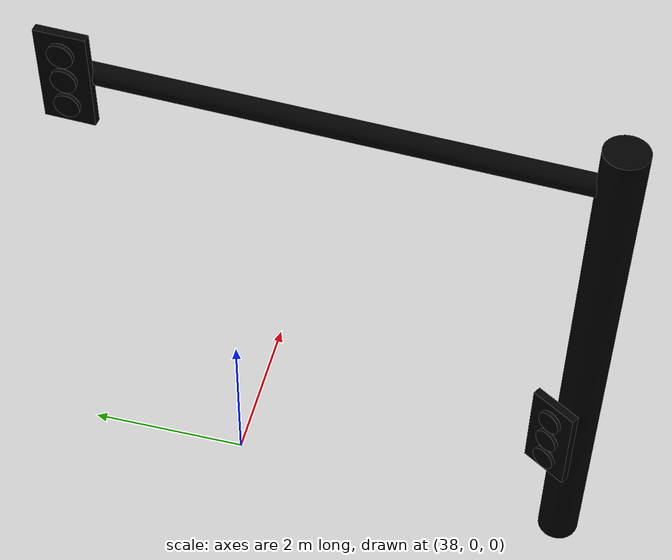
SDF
<sdf version="1.7">
 <world name="default">
  <scene>
   <grid>0</grid>
   <ambient>0.4 0.4 0.4 1</ambient>
   <background>0.7 0.7 0.7 1</background>
   <shadows>1</shadows>
  </scene>
  <light name="sun" type="directional">
   <pose>0 0 10 0 -0 0</pose>
   <diffuse>0.8 0.8 0.8 1</diffuse>
   <specular>0.2 0.2 0.2 1</specular>
   <attenuation>
    <range>1000</range>
    <constant>0.9</constant>
    <linear>0.01</linear>
    <quadratic>0.001</quadratic>
   </attenuation>
   <direction>-0.5 0.1 -0.9</direction>
   <spot><inner_angle>0</inner_angle><outer_angle>0</outer_angle><falloff>0</falloff></spot>
  </light>
  <model name="ground">
   <link name="body">
    <collision name="geom">
     <geometry><plane><normal>0 0 1</normal><size>1 1</size></plane></geometry>
     <surface><friction><ode><mu>100</mu><mu2>50</mu2></ode></friction></surface>
    </collision>
   </link>
   <static>1</static>
  </model>
  <gravity>0 0 -9.8</gravity>
  <magnetic_field>6e-06 2.3e-05 -4.2e-05</magnetic_field>
  <atmosphere type="adiabatic"/>
  <physics type="ode">
   <max_step_size>0.001</max_step_size>
   <real_time_factor>1</real_time_factor>
   <real_time_update_rate>1000</real_time_update_rate>
  </physics>
  <audio><device>default</device></audio>
  <spherical_coordinates>
   <surface_model>EARTH_WGS84</surface_model>
   <latitude_deg>0</latitude_deg>
   <longitude_deg>0</longitude_deg>
   <elevation>0</elevation>
   <heading_deg>0</heading_deg>
  </spherical_coordinates>
  <model name="cantilevered_light">
   <static>0</static>
   <link name="base">
    <gravity>0</gravity>
    <visual name="visual">
     <pose>0 0 3.275 0 -0 0</pose>
     <geometry><cylinder><radius>0.25</radius><length>6.55</length></cylinder></geometry>
     <material><ambient>0 0 0 1</ambient><diffuse>0 0 0 1</diffuse><specular>0 0 0 1</specular></material>
    </visual>
    <collision name="collision">
     <pose>0 0 3.275 0 -0 0</pose>
     <geometry><cylinder><radius>0.25</radius><length>6.55</length></cylinder></geometry>
    </collision>
    <inertial>
     <inertia><ixx>1</ixx><ixy>0</ixy><ixz>0</ixz><iyy>1</iyy><iyz>0</iyz><izz>1</izz></inertia>
     <mass>1</mass>
    </inertial>
   </link>
   <link name="cross_beam">
    <gravity>0</gravity>
    <pose>0 0 6.015 1.5707 -0 0</pose>
    <visual name="visual">
     <pose>0 0 3 0 -0 0</pose>
     <geometry><cylinder><radius>0.125</radius><length>6</length></cylinder></geometry>
     <material><ambient>0 0 0 1</ambient><diffuse>0 0 0 1</diffuse><specular>0 0 0 1</specular></material>
    </visual>
    <collision name="collision">
     <pose>0 0 3 0 -0 0</pose>
     <geometry><cylinder><radius>0.125</radius><length>6</length></cylinder></geometry>
    </collision>
    <inertial>
     <inertia><ixx>1</ixx><ixy>0</ixy><ixz>0</ixz><iyy>1</iyy><iyz>0</iyz><izz>1</izz></inertia>
     <mass>1</mass>
    </inertial>
   </link>
   <frame name="base_frame" attached_to="base"/>
   <frame name="cross_beam_frame"><pose relative_to="base_frame">0 0 6.015 1.5707 -0 0</pose></frame>
   <frame name="traffic_light::__model__" attached_to="traffic_light::light_fixture">
    <pose relative_to="cross_beam_frame">0.13 -0.535 6 -1.5707 0 0</pose>
   </frame>
   <static>0</static>
   <link name="traffic_light::light_fixture">
    <gravity>0</gravity>
    <pose relative_to="traffic_light::__model__">0 0 0 0 -0 0</pose>
    <visual name="visual">
     <pose>0 0 0.535 0 -0 0</pose>
     <geometry><box><size>0.1 0.6 1.2</size></box></geometry>
     <material><ambient>0 0 0 1</ambient><diffuse>0 0 0 1</diffuse><specular>0 0 0 1</specular></material>
    </visual>
    <collision name="collision">
     <pose>0 0 0.535 0 -0 0</pose>
     <geometry><box><size>0.1 0.6 1.2</size></box></geometry>
    </collision>
    <inertial>
     <inertia><ixx>1</ixx><ixy>0</ixy><ixz>0</ixz><iyy>1</iyy><iyz>0</iyz><izz>1</izz></inertia>
     <mass>1</mass>
    </inertial>
   </link>
   <link name="traffic_light::green_off">
    <gravity>0</gravity>
    <pose relative_to="traffic_light::__model__">0.075 0 0.175 0 1.5707 0</pose>
    <collision name="collision">
     <geometry><cylinder><radius>0.15</radius><length>0.05</length></cylinder></geometry>
    </collision>
    <visual name="visual">
     <geometry><cylinder><radius>0.15</radius><length>0.05</length></cylinder></geometry>
     <material>
      <ambient>0 1 0 1</ambient>
      <diffuse>0 0 0 1</diffuse>
      <specular>0 0 0 1</specular>
      <emissive>0 0 0 1</emissive>
     </material>
    </visual>
    <inertial>
     <inertia><ixx>1</ixx><ixy>0</ixy><ixz>0</ixz><iyy>1</iyy><iyz>0</iyz><izz>1</izz></inertia>
     <mass>1</mass>
    </inertial>
   </link>
   <link name="traffic_light::green_on">
    <gravity>0</gravity>
    <pose relative_to="traffic_light::__model__">0 0 0.175 0 1.5707 0</pose>
    <collision name="collision">
     <geometry><cylinder><radius>0.15</radius><length>0.002</length></cylinder></geometry>
    </collision>
    <visual name="visual">
     <geometry><cylinder><radius>0.15</radius><length>0.002</length></cylinder></geometry>
     <material>
      <ambient>0 0 0 1</ambient>
      <diffuse>0 0 0 1</diffuse>
      <specular>0 0 0 1</specular>
      <emissive>0 1 0 1</emissive>
     </material>
    </visual>
    <inertial>
     <inertia><ixx>1</ixx><ixy>0</ixy><ixz>0</ixz><iyy>1</iyy><iyz>0</iyz><izz>1</izz></inertia>
     <mass>1</mass>
    </inertial>
   </link>
   <link name="traffic_light::yellow_off">
    <gravity>0</gravity>
    <pose relative_to="traffic_light::__model__">0.075 0 0.525 0 1.5707 0</pose>
    <collision name="collision">
     <geometry><cylinder><radius>0.15</radius><length>0.05</length></cylinder></geometry>
    </collision>
    <visual name="visual">
     <geometry><cylinder><radius>0.15</radius><length>0.05</length></cylinder></geometry>
     <material>
      <ambient>1 1 0 1</ambient>
      <diffuse>0 0 0 1</diffuse>
      <specular>0 0 0 1</specular>
      <emissive>0 0 0 1</emissive>
     </material>
    </visual>
    <inertial>
     <inertia><ixx>1</ixx><ixy>0</ixy><ixz>0</ixz><iyy>1</iyy><iyz>0</iyz><izz>1</izz></inertia>
     <mass>1</mass>
    </inertial>
   </link>
   <link name="traffic_light::yellow_on">
    <gravity>0</gravity>
    <pose relative_to="traffic_light::__model__">0 0 0.525 0 1.5707 0</pose>
    <collision name="collision">
     <geometry><cylinder><radius>0.15</radius><length>0.002</length></cylinder></geometry>
    </collision>
    <visual name="visual">
     <geometry><cylinder><radius>0.15</radius><length>0.002</length></cylinder></geometry>
     <material>
      <ambient>0 0 0 1</ambient>
      <diffuse>0 0 0 1</diffuse>
      <specular>0 0 0 1</specular>
      <emissive>1 1 0 1</emissive>
     </material>
    </visual>
    <inertial>
     <inertia><ixx>1</ixx><ixy>0</ixy><ixz>0</ixz><iyy>1</iyy><iyz>0</iyz><izz>1</izz></inertia>
     <mass>1</mass>
    </inertial>
   </link>
   <link name="traffic_light::red_off">
    <gravity>0</gravity>
    <pose relative_to="traffic_light::__model__">0.075 0 0.875 0 1.5707 0</pose>
    <collision name="collision">
     <geometry><cylinder><radius>0.15</radius><length>0.05</length></cylinder></geometry>
    </collision>
    <visual name="visual">
     <geometry><cylinder><radius>0.15</radius><length>0.05</length></cylinder></geometry>
     <material>
      <ambient>1 0 0 1</ambient>
      <diffuse>0 0 0 1</diffuse>
      <specular>0 0 0 1</specular>
      <emissive>0 0 0 1</emissive>
     </material>
    </visual>
    <inertial>
     <inertia><ixx>1</ixx><ixy>0</ixy><ixz>0</ixz><iyy>1</iyy><iyz>0</iyz><izz>1</izz></inertia>
     <mass>1</mass>
    </inertial>
   </link>
   <link name="traffic_light::red_on">
    <gravity>0</gravity>
    <pose relative_to="traffic_light::__model__">0 0 0.875 0 1.5707 0</pose>
    <collision name="collision">
     <geometry><cylinder><radius>0.15</radius><length>0.002</length></cylinder></geometry>
    </collision>
    <visual name="visual">
     <geometry><cylinder><radius>0.15</radius><length>0.002</length></cylinder></geometry>
     <material>
      <ambient>0 0 0 1</ambient>
      <diffuse>0 0 0 1</diffuse>
      <specular>0 0 0 1</specular>
      <emissive>1 0 0 1</emissive>
     </material>
    </visual>
    <inertial>
     <inertia><ixx>1</ixx><ixy>0</ixy><ixz>0</ixz><iyy>1</iyy><iyz>0</iyz><izz>1</izz></inertia>
     <mass>1</mass>
    </inertial>
   </link>
   <joint name="traffic_light::green_switch" type="prismatic">
    <parent>traffic_light::green_off</parent>
    <child>traffic_light::green_on</child>
    <axis>
     <xyz>0 0 1</xyz>
     <limit><lower>0</lower><upper>0.101</upper></limit>
     <dynamics><spring_reference>0</spring_reference><spring_stiffness>0</spring_stiffness></dynamics>
    </axis>
   </joint>
   <joint name="traffic_light::green_base" type="fixed">
    <parent>traffic_light::light_fixture</parent>
    <child>traffic_light::green_off</child>
   </joint>
   <joint name="traffic_light::yellow_switch" type="prismatic">
    <parent>traffic_light::yellow_off</parent>
    <child>traffic_light::yellow_on</child>
    <axis>
     <xyz>0 0 1</xyz>
     <limit><lower>0</lower><upper>0.101</upper></limit>
     <dynamics><spring_reference>0</spring_reference><spring_stiffness>0</spring_stiffness></dynamics>
    </axis>
   </joint>
   <joint name="traffic_light::yellow_base" type="fixed">
    <parent>traffic_light::light_fixture</parent>
    <child>traffic_light::yellow_off</child>
   </joint>
   <joint name="traffic_light::red_switch" type="prismatic">
    <parent>traffic_light::red_off</parent>
    <child>traffic_light::red_on</child>
    <axis>
     <xyz>0 0 1</xyz>
     <limit><lower>0</lower><upper>0.101</upper></limit>
     <dynamics><spring_reference>0</spring_reference><spring_stiffness>0</spring_stiffness></dynamics>
    </axis>
   </joint>
   <joint name="traffic_light::red_base" type="fixed">
    <parent>traffic_light::light_fixture</parent>
    <child>traffic_light::red_off</child>
   </joint>
   <joint name="cross_beam_fixed" type="fixed"><parent>base</parent><child>cross_beam</child></joint>
   <joint name="light_mount" type="fixed">
    <parent>cross_beam</parent>
    <child>traffic_light::light_fixture</child>
   </joint>
   <pose>37.8539 -4.22719 0 0 -0 3.08071</pose>
  </model>
  <model name="gazebo_traffic_light">
   <static>1</static>
   <link name="light_fixture">
    <gravity>0</gravity>
    <visual name="visual">
     <pose>0 0 0.535 0 -0 0</pose>
     <geometry><box><size>0.1 0.6 1.2</size></box></geometry>
     <material><ambient>0 0 0 1</ambient><diffuse>0 0 0 1</diffuse><specular>0 0 0 1</specular></material>
    </visual>
    <collision name="collision">
     <pose>0 0 0.535 0 -0 0</pose>
     <geometry><box><size>0.1 0.6 1.2</size></box></geometry>
    </collision>
   </link>
   <link name="green_off">
    <gravity>0</gravity>
    <pose>0.075 0 0.175 0 1.5707 0</pose>
    <collision name="collision">
     <geometry><cylinder><radius>0.15</radius><length>0.05</length></cylinder></geometry>
    </collision>
    <visual name="visual">
     <geometry><cylinder><radius>0.15</radius><length>0.05</length></cylinder></geometry>
     <material>
      <ambient>0 1 0 1</ambient>
      <diffuse>0 0 0 1</diffuse>
      <specular>0 0 0 1</specular>
      <emissive>0 0 0 1</emissive>
     </material>
    </visual>
   </link>
   <link name="green_on">
    <gravity>0</gravity>
    <pose>0 0 0.175 0 1.5707 0</pose>
    <collision name="collision">
     <geometry><cylinder><radius>0.15</radius><length>0.002</length></cylinder></geometry>
    </collision>
    <visual name="visual">
     <geometry><cylinder><radius>0.15</radius><length>0.002</length></cylinder></geometry>
     <material>
      <ambient>0 0 0 1</ambient>
      <diffuse>0 0 0 1</diffuse>
      <specular>0 0 0 1</specular>
      <emissive>0 1 0 1</emissive>
     </material>
    </visual>
   </link>
   <link name="yellow_off">
    <gravity>0</gravity>
    <pose>0.075 0 0.525 0 1.5707 0</pose>
    <collision name="collision">
     <geometry><cylinder><radius>0.15</radius><length>0.05</length></cylinder></geometry>
    </collision>
    <visual name="visual">
     <geometry><cylinder><radius>0.15</radius><length>0.05</length></cylinder></geometry>
     <material>
      <ambient>1 1 0 1</ambient>
      <diffuse>0 0 0 1</diffuse>
      <specular>0 0 0 1</specular>
      <emissive>0 0 0 1</emissive>
     </material>
    </visual>
   </link>
   <link name="yellow_on">
    <gravity>0</gravity>
    <pose>0 0 0.525 0 1.5707 0</pose>
    <collision name="collision">
     <geometry><cylinder><radius>0.15</radius><length>0.002</length></cylinder></geometry>
    </collision>
    <visual name="visual">
     <geometry><cylinder><radius>0.15</radius><length>0.002</length></cylinder></geometry>
     <material>
      <ambient>0 0 0 1</ambient>
      <diffuse>0 0 0 1</diffuse>
      <specular>0 0 0 1</specular>
      <emissive>1 1 0 1</emissive>
     </material>
    </visual>
   </link>
   <link name="red_off">
    <gravity>0</gravity>
    <pose>0.075 0 0.875 0 1.5707 0</pose>
    <collision name="collision">
     <geometry><cylinder><radius>0.15</radius><length>0.05</length></cylinder></geometry>
    </collision>
    <visual name="visual">
     <geometry><cylinder><radius>0.15</radius><length>0.05</length></cylinder></geometry>
     <material>
      <ambient>1 0 0 1</ambient>
      <diffuse>0 0 0 1</diffuse>
      <specular>0 0 0 1</specular>
      <emissive>0 0 0 1</emissive>
     </material>
    </visual>
   </link>
   <link name="red_on">
    <gravity>0</gravity>
    <pose>0 0 0.875 0 1.5707 0</pose>
    <collision name="collision">
     <geometry><cylinder><radius>0.15</radius><length>0.002</length></cylinder></geometry>
    </collision>
    <visual name="visual">
     <geometry><cylinder><radius>0.15</radius><length>0.002</length></cylinder></geometry>
     <material>
      <ambient>0 0 0 1</ambient>
      <diffuse>0 0 0 1</diffuse>
      <specular>0 0 0 1</specular>
      <emissive>1 0 0 1</emissive>
     </material>
    </visual>
   </link>
   <joint name="green_switch" type="prismatic">
    <parent>green_off</parent>
    <child>green_on</child>
    <axis>
     <xyz>0 0 1</xyz>
     <limit><lower>0</lower><upper>0.101</upper></limit>
     <dynamics><spring_reference>0</spring_reference><spring_stiffness>0</spring_stiffness></dynamics>
    </axis>
   </joint>
   <joint name="green_base" type="fixed"><parent>light_fixture</parent><child>green_off</child></joint>
   <joint name="yellow_switch" type="prismatic">
    <parent>yellow_off</parent>
    <child>yellow_on</child>
    <axis>
     <xyz>0 0 1</xyz>
     <limit><lower>0</lower><upper>0.101</upper></limit>
     <dynamics><spring_reference>0</spring_reference><spring_stiffness>0</spring_stiffness></dynamics>
    </axis>
   </joint>
   <joint name="yellow_base" type="fixed"><parent>light_fixture</parent><child>yellow_off</child></joint>
   <joint name="red_switch" type="prismatic">
    <parent>red_off</parent>
    <child>red_on</child>
    <axis>
     <xyz>0 0 1</xyz>
     <limit><lower>0</lower><upper>0.101</upper></limit>
     <dynamics><spring_reference>0</spring_reference><spring_stiffness>0</spring_stiffness></dynamics>
    </axis>
   </joint>
   <joint name="red_base" type="fixed"><parent>light_fixture</parent><child>red_off</child></joint>
   <pose>37.6578 -3.96649 1.47607 0 -0 2.57638</pose>
  </model>
 </world>
</sdf>
